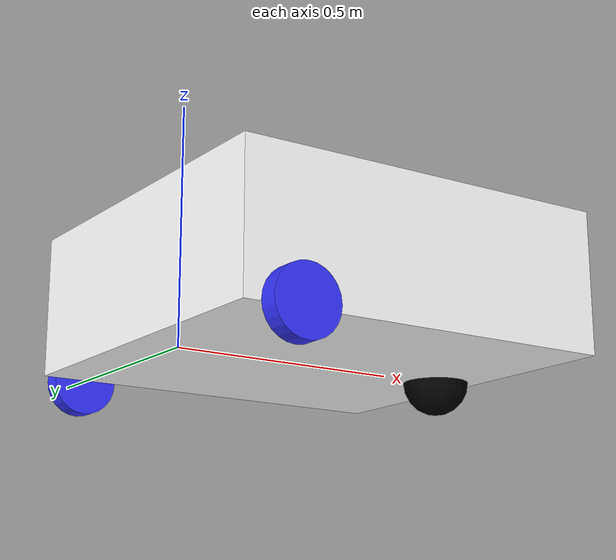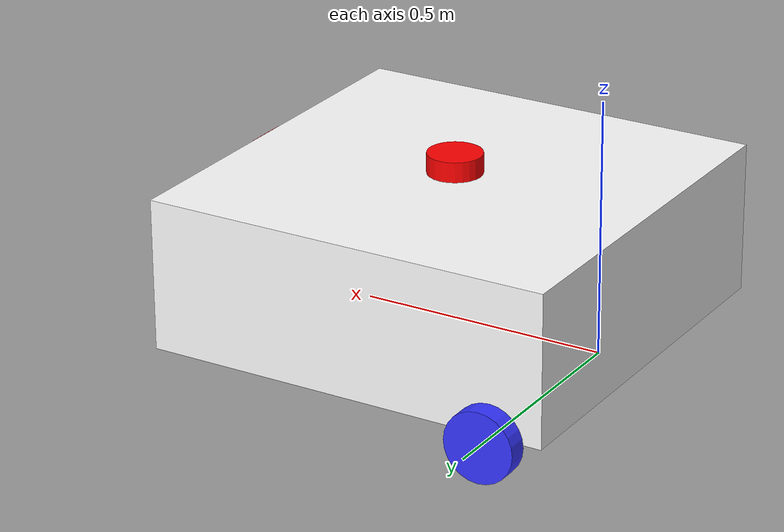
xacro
<?xml version="1.0"?>
<robot xmlns:xacro="http://www.ros.org/wiki/xacro"  name="robot">

    <xacro:include filename="robot_core.xacro" />

    <xacro:include filename="ros2_control.xacro" />
    <xacro:include filename="lidar.xacro" />
    <xacro:include filename="camera.xacro" />

</robot>

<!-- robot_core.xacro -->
<robot xmlns:xacro="http://www.ros.org/wiki/xacro" >

    <xacro:include filename="inertial_macros.xacro"/>

    <material name="white">
        <color rgba="1 1 1 1"/>
    </material>

    <material name="orange">
        <color rgba="1 0.3 0.1 1"/>
    </material>

    <material name="blue">
        <color rgba="0.2 0.2 1 1"/>
    </material>

    <material name="black">
        <color rgba="0 0 0 1"/>
    </material>

    <material name="red">
        <color rgba="1 0 0 1"/>
    </material>

    <link name="base_link">

    </link>

    <joint name="base_footprint_joint" type="fixed">
        <parent link="base_link"/>
        <child link="base_footprint"/>
        <origin xyz="0 0 0" rpy="0 0 0"/>
    </joint>

    <link name="base_footprint">
    </link>

    <joint name="chassis_joint" type="fixed">
        <parent link="base_link"/>
        <child link="chassis"/>
        <origin xyz="-0.1 0 0"/>
    </joint>

    <link name="chassis">
        <visual>
            <origin xyz="0.411 0 0.15"/>
            <geometry>
                <box size ="0.822 0.8 0.3"/>
            </geometry>
            <material name="white"/>
        </visual>
        <collision>
            <origin xyz="0.411 0 0.15"/>
            <geometry>
                <box size ="0.822 0.8 0.3"/>
            </geometry>
        </collision>
        <xacro:inertial_box mass="0.5" x="0.822" y="0.8" z="0.3">
            <origin xyz="0.411 0 0.15" rpy="0 0 0"/>
        </xacro:inertial_box>
    </link>

    <gazebo reference="chassis">
        <material>Gazebo/White</material>
    </gazebo>

    <!-- LEFT WHEEL LINK -->

    <joint name="left_wheel_joint" type="continuous">
        <parent link="base_link"/>
        <child link="left_wheel"/>
        <origin xyz="0 0.43 0" rpy="-${pi/2} 0 0"/>
        <axis xyz="0 0 1"/>
    </joint>

    <link name="left_wheel">
        <visual>
            <geometry>
                <cylinder radius ="0.07" length="0.04"/>
            </geometry>
            <material name="blue"/>
        </visual>
        <collision>
            <geometry>
                <sphere radius ="0.07"/>
            </geometry>
        </collision>
        <xacro:inertial_cylinder mass="0.1" length="0.04" radius="0.07">
            <origin xyz="0 0 0" rpy="0 0 0"/>
        </xacro:inertial_cylinder>
    </link>

    <gazebo reference="left_wheel">
        <material>Gazebo/Blue</material>
    </gazebo>

    <joint name="right_wheel_joint" type="continuous">
        <parent link="base_link"/>
        <child link="right_wheel"/>
        <origin xyz="0 -0.43 0" rpy="${pi/2} 0 0"/>
        <axis xyz="0 0 -1"/>
    </joint>

    <link name="right_wheel">
        <visual>
            <geometry>
                <cylinder radius ="0.07" length="0.04"/>
            </geometry>
            <material name="blue"/>
        </visual>
        <collision>
            <geometry>
                <sphere radius ="0.07"/>
            </geometry>
        </collision>
        <xacro:inertial_cylinder mass="0.1" length="0.04" radius="0.07">
            <origin xyz="0 0 0" rpy="0 0 0"/>
        </xacro:inertial_cylinder>
    </link>

    <gazebo reference="right_wheel">
        <material>Gazebo/Blue</material>
    </gazebo>

    <joint name="caster_wheel_joint" type="fixed">
        <parent link="chassis"/>
        <child link="caster_wheel"/>
        <origin xyz="0.74 0 0" rpy="0 0 0"/>
    </joint>

    <link name="caster_wheel">
        <visual>
            <geometry>
                <sphere radius="0.07" />
            </geometry>
            <material name="black"/>
        </visual>
        <collision>
            <geometry>
                <sphere radius="0.07" />
            </geometry>
            <material name="black"/>
        </collision>
        <xacro:inertial_sphere mass="0.1" radius="0.07">
            <origin xyz="0 0 0" rpy="0 0 0"/>
        </xacro:inertial_sphere>
    </link>

    <gazebo reference="caster_wheel">
        <material>Gazebo/Black</material>
        <mu1 value="0.001"/>
        <mu2 value="0.001"/>
    </gazebo>

</robot>

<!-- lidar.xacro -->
<robot xmlns:xacro="http://www.ros.org/wiki/xacro" >

    <joint name="laser_joint" type="fixed">
        <parent link="chassis"/>
        <child link="laser_frame"/>
        <origin xyz="0.409575 0 0.32" rpy="0 0 0"/>
    </joint>

    <link name="laser_frame">
        <visual>
            <geometry>
                <cylinder radius ="0.05395" length="0.04"/>
            </geometry>
            <material name="red"/>
        </visual>
        <collision>
            <geometry>
                <cylinder radius ="0.05395" length="0.04"/>
            </geometry>
        </collision>
        <xacro:inertial_cylinder mass="0.1" length="0.04" radius="0.05395">
            <origin xyz="0 0 0" rpy="0 0 0"/>
        </xacro:inertial_cylinder>
    </link>

    <gazebo reference="laser_frame">
        <material>Gazebo/Red</material>

        <sensor name="laser" type="ray">
            <pose>0 0 0 0 0 0</pose>
            <visualize>true</visualize>
            <update_rate>10</update_rate>
            <ray>
                <scan>
                    <horizontal>
                        <samples>360</samples>
                        <resolution>1</resolution>
                        <min_angle>-3.14</min_angle>
                        <max_angle>3.14</max_angle>
                    </horizontal>
                </scan>
                <range>
                    <min>0.3</min>
                    <max>12</max>
                    <resolution>0.01</resolution>
                </range>
            </ray>
            <plugin name="laser_controller" filename="libgazebo_ros_ray_sensor.so">
                <ros>
                    <argument>~/out:=scan</argument>
                </ros>
                <output_type>sensor_msgs/LaserScan</output_type>
                <frame_name>laser_frame</frame_name>
            </plugin>
        </sensor>
    </gazebo>
</robot>

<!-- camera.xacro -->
<robot xmlns:xacro="http://www.ros.org/wiki/xacro" >

    <joint name="camera_joint" type="fixed">
        <parent link="chassis"/>
        <child link="camera_link"/>
        <origin xyz="0.822 0 0.2794" rpy="0 0 0"/>
    </joint>

    <link name="camera_link">
        <visual>
            <geometry>
                <box size="0.02516 0.08970 0.02491"/>
            </geometry>
            <material name="red"/>
        </visual>
    </link>

    <joint name="camera_optical_joint" type="fixed">
        <parent link="camera_link"/>
        <child link="camera_link_optical"/>
        <origin xyz="0 0 0" rpy="${-pi/2} 0 ${-pi/2}"/>
    </joint>

    <link name="camera_link_optical"></link>

    <gazebo reference="camera_link">
        <material>Gazebo/Red</material>

        <sensor name="camera" type="camera">
            <pose>0 0 0 0 0 0</pose>
            <visualize>true</visualize>
            <update_rate>10</update_rate>
            <camera>
                <horizontal_fov>1.089</horizontal_fov>
                <image>
                    <format>R8G8B8</format>
                    <width>640</width>
                    <height>480</height>
                </image>
                <clip>
                    <near>0.05</near>
                    <far>8.0</far>
                </clip>
            </camera>
            <plugin name="camera_controller" filename="libgazebo_ros_camera.so">
                <frame_name>camera_link_optical</frame_name>
            </plugin>
        </sensor>
    </gazebo>
</robot>
